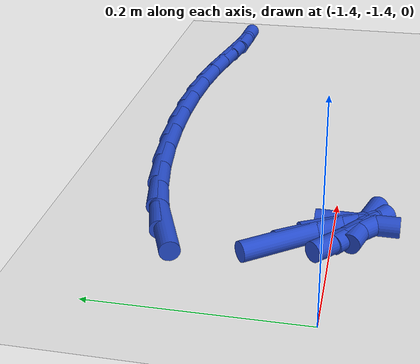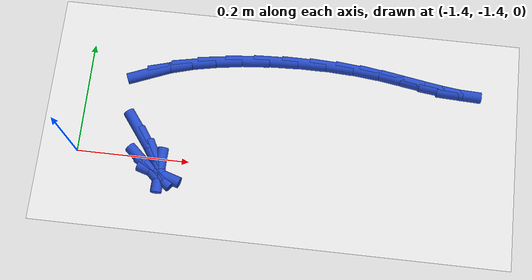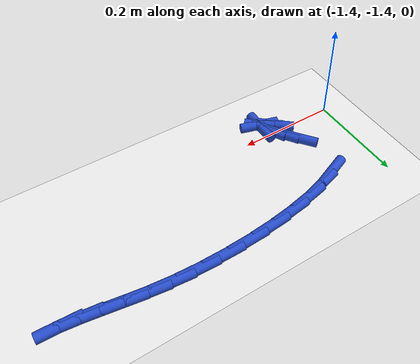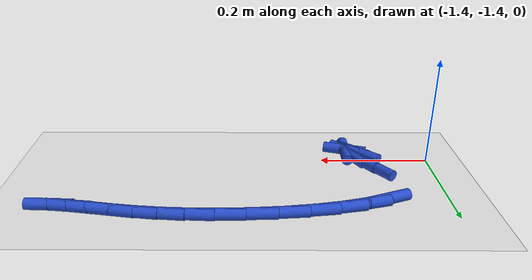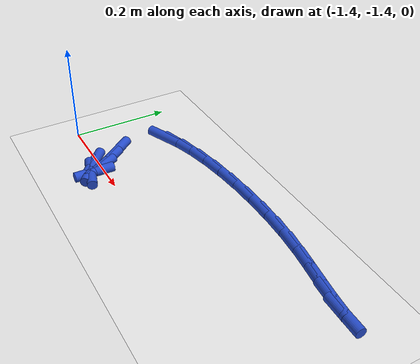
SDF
<sdf version="1.6">
 <world name="default">
  <model name="ground_plane">
   <static>1</static>
   <link name="link">
    <collision name="collision">
     <geometry><plane><normal>0 0 1</normal><size>100 100</size></plane></geometry>
     <surface><friction><ode><mu>100</mu><mu2>50</mu2></ode></friction></surface>
    </collision>
    <visual name="visual">
     <cast_shadows>0</cast_shadows>
     <geometry><plane><normal>0 0 1</normal><size>100 100</size></plane></geometry>
     <material>
      <script><uri>file://media/materials/scripts/gazebo.material</uri><name>Gazebo/WhiteGlow</name></script>
     </material>
    </visual>
   </link>
  </model>
  <model name="line">
   <link name="link_181">
    <pose>-1.2939218912213992 -1.353801599442333 0.01 0 1.57 -0.9227265925162301</pose>
    <collision name="collision">
     <geometry><cylinder><radius>0.01</radius><length>0.08</length></cylinder></geometry>
    </collision>
    <visual name="visual">
     <material>
      <script><name>Gazebo/Blue</name><uri>file://media/materials/scripts/gazebo.material</uri></script>
     </material>
     <geometry><cylinder><radius>0.01</radius><length>0.08</length></cylinder></geometry>
    </visual>
   </link>
   <link name="link_182">
    <pose>-1.271697619434932 -1.3831536276008747 0.01 0 1.57 -0.9772708521189176</pose>
    <collision name="collision">
     <geometry><cylinder><radius>0.01</radius><length>0.08</length></cylinder></geometry>
    </collision>
    <visual name="visual">
     <material>
      <script><name>Gazebo/Blue</name><uri>file://media/materials/scripts/gazebo.material</uri></script>
     </material>
     <geometry><cylinder><radius>0.01</radius><length>0.08</length></cylinder></geometry>
    </visual>
   </link>
   <link name="link_183">
    <pose>-1.2561019679663776 -1.4062694704758312 0.01 0 1.57 -1.0916069326714097</pose>
    <collision name="collision">
     <geometry><cylinder><radius>0.01</radius><length>0.08</length></cylinder></geometry>
    </collision>
    <visual name="visual">
     <material>
      <script><name>Gazebo/Blue</name><uri>file://media/materials/scripts/gazebo.material</uri></script>
     </material>
     <geometry><cylinder><radius>0.01</radius><length>0.08</length></cylinder></geometry>
    </visual>
   </link>
   <link name="link_184">
    <pose>-1.2479558160905109 -1.421947781176662 0.01 0 1.57 1.5531508541874812</pose>
    <collision name="collision">
     <geometry><cylinder><radius>0.01</radius><length>0.08</length></cylinder></geometry>
    </collision>
    <visual name="visual">
     <material>
      <script><name>Gazebo/Blue</name><uri>file://media/materials/scripts/gazebo.material</uri></script>
     </material>
     <geometry><cylinder><radius>0.01</radius><length>0.08</length></cylinder></geometry>
    </visual>
   </link>
   <link name="link_185">
    <pose>-1.2480800430821035 -1.4289872128128251 0.01 0 1.57 -0.29505162516659683</pose>
    <collision name="collision">
     <geometry><cylinder><radius>0.01</radius><length>0.08</length></cylinder></geometry>
    </collision>
    <visual name="visual">
     <material>
      <script><name>Gazebo/Blue</name><uri>file://media/materials/scripts/gazebo.material</uri></script>
     </material>
     <geometry><cylinder><radius>0.01</radius><length>0.08</length></cylinder></geometry>
    </visual>
   </link>
   <link name="link_186">
    <pose>-1.2572955282159297 -1.4261864184937807 0.01 0 1.57 -0.6265042898922729</pose>
    <collision name="collision">
     <geometry><cylinder><radius>0.01</radius><length>0.08</length></cylinder></geometry>
    </collision>
    <visual name="visual">
     <material>
      <script><name>Gazebo/Blue</name><uri>file://media/materials/scripts/gazebo.material</uri></script>
     </material>
     <geometry><cylinder><radius>0.01</radius><length>0.08</length></cylinder></geometry>
    </visual>
   </link>
   <link name="link_187">
    <pose>-1.2763820802834076 -1.4123720633845227 0.01 0 1.57 -0.7318038658725031</pose>
    <collision name="collision">
     <geometry><cylinder><radius>0.01</radius><length>0.08</length></cylinder></geometry>
    </collision>
    <visual name="visual">
     <material>
      <script><name>Gazebo/Blue</name><uri>file://media/materials/scripts/gazebo.material</uri></script>
     </material>
     <geometry><cylinder><radius>0.01</radius><length>0.08</length></cylinder></geometry>
    </visual>
   </link>
   <link name="link_194">
    <pose>-1.2922965937453248 -1.2452993982563205 0.01 0 1.57 0.3832491642608982</pose>
    <collision name="collision">
     <geometry><cylinder><radius>0.01</radius><length>0.08</length></cylinder></geometry>
    </collision>
    <visual name="visual">
     <material>
      <script><name>Gazebo/Blue</name><uri>file://media/materials/scripts/gazebo.material</uri></script>
     </material>
     <geometry><cylinder><radius>0.01</radius><length>0.08</length></cylinder></geometry>
    </visual>
   </link>
   <link name="link_195">
    <pose>-1.2565416146838202 -1.230883522177215 0.01 0 1.57 0.2742883145947473</pose>
    <collision name="collision">
     <geometry><cylinder><radius>0.01</radius><length>0.08</length></cylinder></geometry>
    </collision>
    <visual name="visual">
     <material>
      <script><name>Gazebo/Blue</name><uri>file://media/materials/scripts/gazebo.material</uri></script>
     </material>
     <geometry><cylinder><radius>0.01</radius><length>0.08</length></cylinder></geometry>
    </visual>
   </link>
   <link name="link_196">
    <pose>-1.2147251681391265 -1.2191171925343416 0.01 0 1.57 0.19568474726687377</pose>
    <collision name="collision">
     <geometry><cylinder><radius>0.01</radius><length>0.08</length></cylinder></geometry>
    </collision>
    <visual name="visual">
     <material>
      <script><name>Gazebo/Blue</name><uri>file://media/materials/scripts/gazebo.material</uri></script>
     </material>
     <geometry><cylinder><radius>0.01</radius><length>0.08</length></cylinder></geometry>
    </visual>
   </link>
   <link name="link_197">
    <pose>-1.1683288381205235 -1.2099204488173079 0.01 0 1.57 0.13469157068518647</pose>
    <collision name="collision">
     <geometry><cylinder><radius>0.01</radius><length>0.08</length></cylinder></geometry>
    </collision>
    <visual name="visual">
     <material>
      <script><name>Gazebo/Blue</name><uri>file://media/materials/scripts/gazebo.material</uri></script>
     </material>
     <geometry><cylinder><radius>0.01</radius><length>0.08</length></cylinder></geometry>
    </visual>
   </link>
   <link name="link_198">
    <pose>-1.1188342086372913 -1.20321333051572 0.01 0 1.57 0.08388292686955254</pose>
    <collision name="collision">
     <geometry><cylinder><radius>0.01</radius><length>0.08</length></cylinder></geometry>
    </collision>
    <visual name="visual">
     <material>
      <script><name>Gazebo/Blue</name><uri>file://media/materials/scripts/gazebo.material</uri></script>
     </material>
     <geometry><cylinder><radius>0.01</radius><length>0.08</length></cylinder></geometry>
    </visual>
   </link>
   <link name="link_199">
    <pose>-1.0677228636987088 -1.1989158771191846 0.01 0 1.57 0.03837888809072109</pose>
    <collision name="collision">
     <geometry><cylinder><radius>0.01</radius><length>0.08</length></cylinder></geometry>
    </collision>
    <visual name="visual">
     <material>
      <script><name>Gazebo/Blue</name><uri>file://media/materials/scripts/gazebo.material</uri></script>
     </material>
     <geometry><cylinder><radius>0.01</radius><length>0.08</length></cylinder></geometry>
    </visual>
   </link>
   <link name="link_200">
    <pose>-1.0164763873140574 -1.1969481281173089 0.01 0 1.57 -0.005651137192307307</pose>
    <collision name="collision">
     <geometry><cylinder><radius>0.01</radius><length>0.08</length></cylinder></geometry>
    </collision>
    <visual name="visual">
     <material>
      <script><name>Gazebo/Blue</name><uri>file://media/materials/scripts/gazebo.material</uri></script>
     </material>
     <geometry><cylinder><radius>0.01</radius><length>0.08</length></cylinder></geometry>
    </visual>
   </link>
   <link name="link_201">
    <pose>-0.9665763634926148 -1.1972301229996982 0.01 0 1.57 -0.052038693081761934</pose>
    <collision name="collision">
     <geometry><cylinder><radius>0.01</radius><length>0.08</length></cylinder></geometry>
    </collision>
    <visual name="visual">
     <material>
      <script><name>Gazebo/Blue</name><uri>file://media/materials/scripts/gazebo.material</uri></script>
     </material>
     <geometry><cylinder><radius>0.01</radius><length>0.08</length></cylinder></geometry>
    </visual>
   </link>
   <link name="link_202">
    <pose>-0.9195043762436624 -1.1996819012559605 0.01 0 1.57 -0.10295445102545366</pose>
    <collision name="collision">
     <geometry><cylinder><radius>0.01</radius><length>0.08</length></cylinder></geometry>
    </collision>
    <visual name="visual">
     <material>
      <script><name>Gazebo/Blue</name><uri>file://media/materials/scripts/gazebo.material</uri></script>
     </material>
     <geometry><cylinder><radius>0.01</radius><length>0.08</length></cylinder></geometry>
    </visual>
   </link>
   <link name="link_203">
    <pose>-0.8764843432846291 -1.2041267207051995 0.01 0 1.57 -0.14441260449519738</pose>
    <collision name="collision">
     <geometry><cylinder><radius>0.01</radius><length>0.08</length></cylinder></geometry>
    </collision>
    <visual name="visual">
     <material>
      <script><name>Gazebo/Blue</name><uri>file://media/materials/scripts/gazebo.material</uri></script>
     </material>
     <geometry><cylinder><radius>0.01</radius><length>0.08</length></cylinder></geometry>
    </visual>
   </link>
   <link name="link_204">
    <pose>-0.8372581752191272 -1.2098311845760332 0.01 0 1.57 -0.1650292656492402</pose>
    <collision name="collision">
     <geometry><cylinder><radius>0.01</radius><length>0.08</length></cylinder></geometry>
    </collision>
    <visual name="visual">
     <material>
      <script><name>Gazebo/Blue</name><uri>file://media/materials/scripts/gazebo.material</uri></script>
     </material>
     <geometry><cylinder><radius>0.01</radius><length>0.08</length></cylinder></geometry>
    </visual>
   </link>
   <link name="link_205">
    <pose>-0.8010389777512559 -1.2158632724386367 0.01 0 1.57 -0.15829623633991585</pose>
    <collision name="collision">
     <geometry><cylinder><radius>0.01</radius><length>0.08</length></cylinder></geometry>
    </collision>
    <visual name="visual">
     <material>
      <script><name>Gazebo/Blue</name><uri>file://media/materials/scripts/gazebo.material</uri></script>
     </material>
     <geometry><cylinder><radius>0.01</radius><length>0.08</length></cylinder></geometry>
    </visual>
   </link>
   <link name="link_206">
    <pose>-0.7670392019807831 -1.221290717988181 0.01 0 1.57 -0.11889580818955946</pose>
    <collision name="collision">
     <geometry><cylinder><radius>0.01</radius><length>0.08</length></cylinder></geometry>
    </collision>
    <visual name="visual">
     <material>
      <script><name>Gazebo/Blue</name><uri>file://media/materials/scripts/gazebo.material</uri></script>
     </material>
     <geometry><cylinder><radius>0.01</radius><length>0.08</length></cylinder></geometry>
    </visual>
   </link>
   <link name="link_207">
    <pose>-0.7344712990074765 -1.225181254919836 0.01 0 1.57 -0.04449450658305219</pose>
    <collision name="collision">
     <geometry><cylinder><radius>0.01</radius><length>0.08</length></cylinder></geometry>
    </collision>
    <visual name="visual">
     <material>
      <script><name>Gazebo/Blue</name><uri>file://media/materials/scripts/gazebo.material</uri></script>
     </material>
     <geometry><cylinder><radius>0.01</radius><length>0.08</length></cylinder></geometry>
    </visual>
   </link>
  </model>
 </world>
</sdf>
